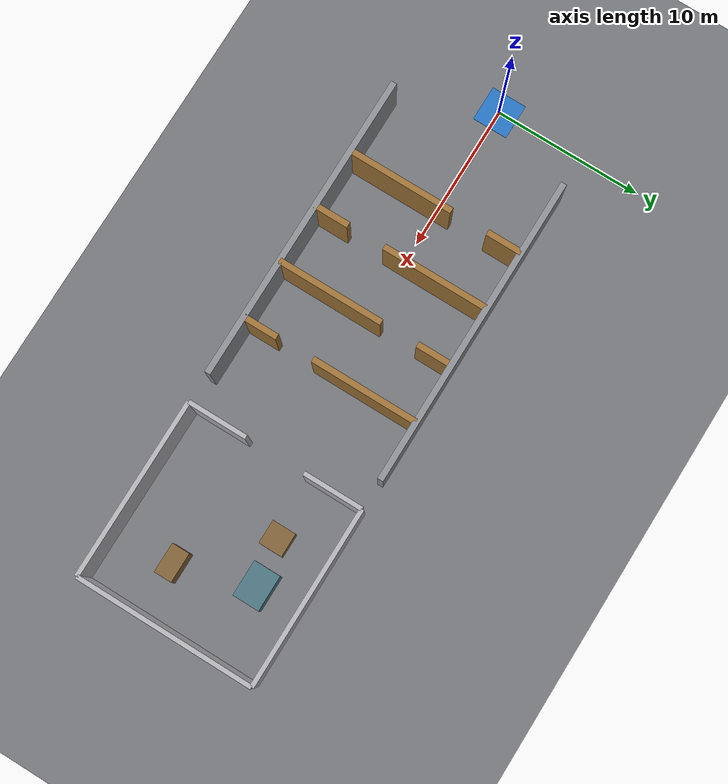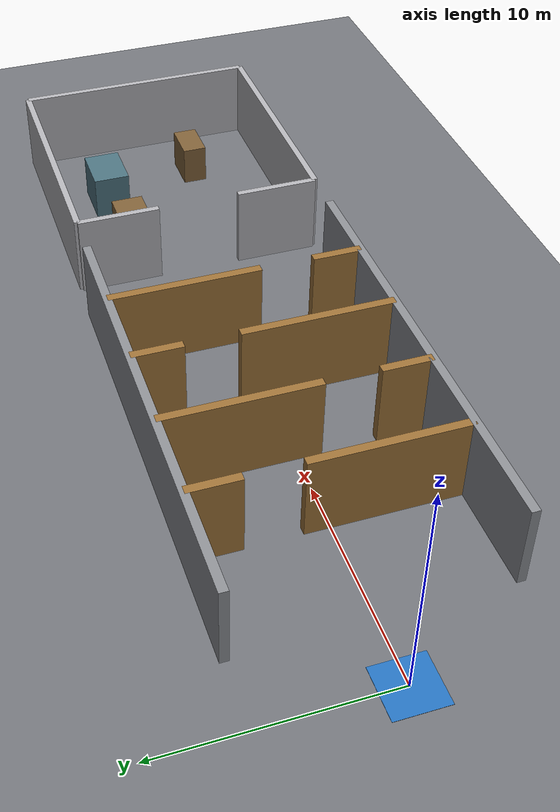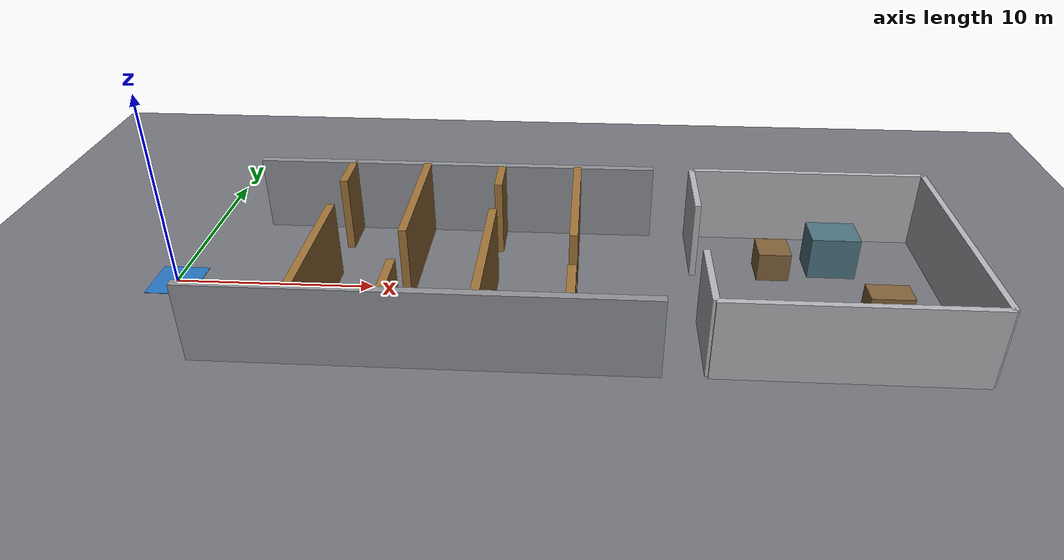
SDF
<?xml version="1.0" ?>
<!-- GENERATED by drone_sim/tools/gen_world.py - do not edit by hand. -->
<sdf version="1.9">
  <world name="factory">
    <physics type="ode">
      <max_step_size>0.004</max_step_size>
      <real_time_factor>1.0</real_time_factor>
      <real_time_update_rate>250</real_time_update_rate>
    </physics>
    <gravity>0 0 -9.8</gravity>
    <magnetic_field>6e-06 2.3e-05 -4.2e-05</magnetic_field>
    <atmosphere type='adiabatic'/>
    <scene>
      <grid>false</grid>
      <ambient>0.5 0.5 0.5 1</ambient>
      <background>0.75 0.78 0.82 1</background>
      <shadows>true</shadows>
    </scene>

    <plugin filename="gz-sim-physics-system"
            name="gz::sim::systems::Physics"/>
    <plugin filename="gz-sim-user-commands-system"
            name="gz::sim::systems::UserCommands"/>
    <plugin filename="gz-sim-scene-broadcaster-system"
            name="gz::sim::systems::SceneBroadcaster"/>
    <plugin filename="gz-sim-contact-system"
            name="gz::sim::systems::Contact"/>
    <plugin filename="gz-sim-imu-system"
            name="gz::sim::systems::Imu"/>
    <plugin filename="gz-sim-air-pressure-system"
            name="gz::sim::systems::AirPressure"/>
    <plugin filename="gz-sim-magnetometer-system"
            name="gz::sim::systems::Magnetometer"/>
    <plugin filename="gz-sim-navsat-system"
            name="gz::sim::systems::NavSat"/>
    <plugin filename="gz-sim-sensors-system"
            name="gz::sim::systems::Sensors">
      <render_engine>ogre2</render_engine>
    </plugin>
    <plugin filename="gz-sim-wind-effects-system"
            name="gz::sim::systems::WindEffects">
      <force_approximation_scaling_factor>1</force_approximation_scaling_factor>
    </plugin>

    <spherical_coordinates>
      <surface_model>EARTH_WGS84</surface_model>
      <world_frame_orientation>ENU</world_frame_orientation>
      <latitude_deg>37.4</latitude_deg>
      <longitude_deg>-122.1</longitude_deg>
      <elevation>0</elevation>
    </spherical_coordinates>

    <light name="sun" type="directional">
      <pose>0 0 100 0 0 0</pose>
      <cast_shadows>true</cast_shadows>
      <intensity>1</intensity>
      <direction>-0.3 0.2 -0.9</direction>
      <diffuse>0.95 0.95 0.95 1</diffuse>
      <specular>0.25 0.25 0.25 1</specular>
      <attenuation><range>1000</range><constant>1</constant>
        <linear>0</linear><quadratic>0</quadratic></attenuation>
    </light>

    <model name="ground_plane">
      <static>true</static>
      <link name="link">
        <collision name="collision">
          <geometry><plane><normal>0 0 1</normal><size>400 400</size></plane></geometry>
          <surface><friction><ode><mu>1.0</mu><mu2>1.0</mu2></ode></friction></surface>
        </collision>
        <visual name="visual">
          <geometry><plane><normal>0 0 1</normal><size>400 400</size></plane></geometry>
          <material>
            <ambient>0.35 0.36 0.38 1</ambient>
            <diffuse>0.45 0.46 0.48 1</diffuse>
            <specular>0.1 0.1 0.1 1</specular>
          </material>
        </visual>
        <enable_wind>true</enable_wind>
      </link>
    </model>

    <model name="launch_base">
      <static>true</static>
      <pose>0 0 0.01 0 0 0</pose>
      <link name="link">
        <visual name="visual">
          <geometry><box><size>2.4 2.4 0.02</size></box></geometry>
          <material>
            <ambient>0.105 0.315 0.5249999999999999 1</ambient>
            <diffuse>0.15 0.45 0.75 1</diffuse>
          </material>
        </visual>
      </link>
    </model>

    <model name="corridor_wall_left">
      <static>true</static>
      <pose>13.5 6.0 2.0 0 0 0</pose>
      <link name="link">
        <collision name="collision">
          <geometry><box><size>21.0 0.4 4.0</size></box></geometry>
        </collision>
        <visual name="visual">
          <geometry><box><size>21.0 0.4 4.0</size></box></geometry>
          <material>
            <ambient>0.385 0.392 0.40599999999999997 1</ambient>
            <diffuse>0.55 0.56 0.58 1</diffuse>
          </material>
        </visual>
      </link>
    </model>

    <model name="corridor_wall_right">
      <static>true</static>
      <pose>13.5 -6.0 2.0 0 0 0</pose>
      <link name="link">
        <collision name="collision">
          <geometry><box><size>21.0 0.4 4.0</size></box></geometry>
        </collision>
        <visual name="visual">
          <geometry><box><size>21.0 0.4 4.0</size></box></geometry>
          <material>
            <ambient>0.385 0.392 0.40599999999999997 1</ambient>
            <diffuse>0.55 0.56 0.58 1</diffuse>
          </material>
        </visual>
      </link>
    </model>

    <model name="gate0_lower">
      <static>true</static>
      <pose>8.0 -2.425 2.0 0 0 0</pose>
      <link name="link">
        <collision name="collision">
          <geometry><box><size>0.4 7.15 4.0</size></box></geometry>
        </collision>
        <visual name="visual">
          <geometry><box><size>0.4 7.15 4.0</size></box></geometry>
          <material>
            <ambient>0.434 0.315 0.154 1</ambient>
            <diffuse>0.62 0.45 0.22 1</diffuse>
          </material>
        </visual>
      </link>
    </model>

    <model name="gate0_upper">
      <static>true</static>
      <pose>8.0 4.825 2.0 0 0 0</pose>
      <link name="link">
        <collision name="collision">
          <geometry><box><size>0.4 2.35 4.0</size></box></geometry>
        </collision>
        <visual name="visual">
          <geometry><box><size>0.4 2.35 4.0</size></box></geometry>
          <material>
            <ambient>0.434 0.315 0.154 1</ambient>
            <diffuse>0.62 0.45 0.22 1</diffuse>
          </material>
        </visual>
      </link>
    </model>

    <model name="gate1_lower">
      <static>true</static>
      <pose>12.0 -4.825 2.0 0 0 0</pose>
      <link name="link">
        <collision name="collision">
          <geometry><box><size>0.4 2.35 4.0</size></box></geometry>
        </collision>
        <visual name="visual">
          <geometry><box><size>0.4 2.35 4.0</size></box></geometry>
          <material>
            <ambient>0.434 0.315 0.154 1</ambient>
            <diffuse>0.62 0.45 0.22 1</diffuse>
          </material>
        </visual>
      </link>
    </model>

    <model name="gate1_upper">
      <static>true</static>
      <pose>12.0 2.425 2.0 0 0 0</pose>
      <link name="link">
        <collision name="collision">
          <geometry><box><size>0.4 7.15 4.0</size></box></geometry>
        </collision>
        <visual name="visual">
          <geometry><box><size>0.4 7.15 4.0</size></box></geometry>
          <material>
            <ambient>0.434 0.315 0.154 1</ambient>
            <diffuse>0.62 0.45 0.22 1</diffuse>
          </material>
        </visual>
      </link>
    </model>

    <model name="gate2_lower">
      <static>true</static>
      <pose>16.0 -2.425 2.0 0 0 0</pose>
      <link name="link">
        <collision name="collision">
          <geometry><box><size>0.4 7.15 4.0</size></box></geometry>
        </collision>
        <visual name="visual">
          <geometry><box><size>0.4 7.15 4.0</size></box></geometry>
          <material>
            <ambient>0.434 0.315 0.154 1</ambient>
            <diffuse>0.62 0.45 0.22 1</diffuse>
          </material>
        </visual>
      </link>
    </model>

    <model name="gate2_upper">
      <static>true</static>
      <pose>16.0 4.825 2.0 0 0 0</pose>
      <link name="link">
        <collision name="collision">
          <geometry><box><size>0.4 2.35 4.0</size></box></geometry>
        </collision>
        <visual name="visual">
          <geometry><box><size>0.4 2.35 4.0</size></box></geometry>
          <material>
            <ambient>0.434 0.315 0.154 1</ambient>
            <diffuse>0.62 0.45 0.22 1</diffuse>
          </material>
        </visual>
      </link>
    </model>

    <model name="gate3_lower">
      <static>true</static>
      <pose>20.0 -4.825 2.0 0 0 0</pose>
      <link name="link">
        <collision name="collision">
          <geometry><box><size>0.4 2.35 4.0</size></box></geometry>
        </collision>
        <visual name="visual">
          <geometry><box><size>0.4 2.35 4.0</size></box></geometry>
          <material>
            <ambient>0.434 0.315 0.154 1</ambient>
            <diffuse>0.62 0.45 0.22 1</diffuse>
          </material>
        </visual>
      </link>
    </model>

    <model name="gate3_upper">
      <static>true</static>
      <pose>20.0 2.425 2.0 0 0 0</pose>
      <link name="link">
        <collision name="collision">
          <geometry><box><size>0.4 7.15 4.0</size></box></geometry>
        </collision>
        <visual name="visual">
          <geometry><box><size>0.4 7.15 4.0</size></box></geometry>
          <material>
            <ambient>0.434 0.315 0.154 1</ambient>
            <diffuse>0.62 0.45 0.22 1</diffuse>
          </material>
        </visual>
      </link>
    </model>

    <model name="room_wall_far">
      <static>true</static>
      <pose>38.0 0.0 2.0 0 0 0</pose>
      <link name="link">
        <collision name="collision">
          <geometry><box><size>0.3 12.0 4.0</size></box></geometry>
        </collision>
        <visual name="visual">
          <geometry><box><size>0.3 12.0 4.0</size></box></geometry>
          <material>
            <ambient>0.48999999999999994 0.48999999999999994 0.504 1</ambient>
            <diffuse>0.7 0.7 0.72 1</diffuse>
          </material>
        </visual>
      </link>
    </model>

    <model name="room_wall_left">
      <static>true</static>
      <pose>32.0 6.0 2.0 0 0 0</pose>
      <link name="link">
        <collision name="collision">
          <geometry><box><size>12.0 0.3 4.0</size></box></geometry>
        </collision>
        <visual name="visual">
          <geometry><box><size>12.0 0.3 4.0</size></box></geometry>
          <material>
            <ambient>0.48999999999999994 0.48999999999999994 0.504 1</ambient>
            <diffuse>0.7 0.7 0.72 1</diffuse>
          </material>
        </visual>
      </link>
    </model>

    <model name="room_wall_right">
      <static>true</static>
      <pose>32.0 -6.0 2.0 0 0 0</pose>
      <link name="link">
        <collision name="collision">
          <geometry><box><size>12.0 0.3 4.0</size></box></geometry>
        </collision>
        <visual name="visual">
          <geometry><box><size>12.0 0.3 4.0</size></box></geometry>
          <material>
            <ambient>0.48999999999999994 0.48999999999999994 0.504 1</ambient>
            <diffuse>0.7 0.7 0.72 1</diffuse>
          </material>
        </visual>
      </link>
    </model>

    <model name="room_wall_near_p">
      <static>true</static>
      <pose>26.0 4.0 2.0 0 0 0</pose>
      <link name="link">
        <collision name="collision">
          <geometry><box><size>0.3 4.0 4.0</size></box></geometry>
        </collision>
        <visual name="visual">
          <geometry><box><size>0.3 4.0 4.0</size></box></geometry>
          <material>
            <ambient>0.48999999999999994 0.48999999999999994 0.504 1</ambient>
            <diffuse>0.7 0.7 0.72 1</diffuse>
          </material>
        </visual>
      </link>
    </model>

    <model name="room_wall_near_m">
      <static>true</static>
      <pose>26.0 -4.0 2.0 0 0 0</pose>
      <link name="link">
        <collision name="collision">
          <geometry><box><size>0.3 4.0 4.0</size></box></geometry>
        </collision>
        <visual name="visual">
          <geometry><box><size>0.3 4.0 4.0</size></box></geometry>
          <material>
            <ambient>0.48999999999999994 0.48999999999999994 0.504 1</ambient>
            <diffuse>0.7 0.7 0.72 1</diffuse>
          </material>
        </visual>
      </link>
    </model>

    <model name="room_crate_a">
      <static>true</static>
      <pose>30.0 2.5 0.75 0 0 0</pose>
      <link name="link">
        <collision name="collision">
          <geometry><box><size>1.6 1.6 1.5</size></box></geometry>
        </collision>
        <visual name="visual">
          <geometry><box><size>1.6 1.6 1.5</size></box></geometry>
          <material>
            <ambient>0.35 0.26599999999999996 0.154 1</ambient>
            <diffuse>0.5 0.38 0.22 1</diffuse>
          </material>
        </visual>
      </link>
    </model>

    <model name="room_crate_b">
      <static>true</static>
      <pose>34.5 -2.0 1.0 0 0 0</pose>
      <link name="link">
        <collision name="collision">
          <geometry><box><size>2.0 1.2 2.0</size></box></geometry>
        </collision>
        <visual name="visual">
          <geometry><box><size>2.0 1.2 2.0</size></box></geometry>
          <material>
            <ambient>0.35 0.26599999999999996 0.154 1</ambient>
            <diffuse>0.5 0.38 0.22 1</diffuse>
          </material>
        </visual>
      </link>
    </model>

    <model name="room_machine">
      <static>true</static>
      <pose>33.0 3.0 1.1 0 0 0</pose>
      <link name="link">
        <collision name="collision">
          <geometry><box><size>2.4 1.8 2.2</size></box></geometry>
        </collision>
        <visual name="visual">
          <geometry><box><size>2.4 1.8 2.2</size></box></geometry>
          <material>
            <ambient>0.21 0.315 0.35 1</ambient>
            <diffuse>0.3 0.45 0.5 1</diffuse>
          </material>
        </visual>
      </link>
    </model>

  </world>
</sdf>
